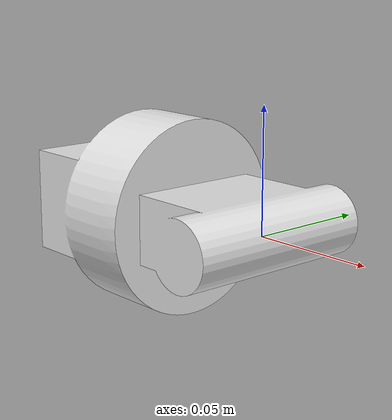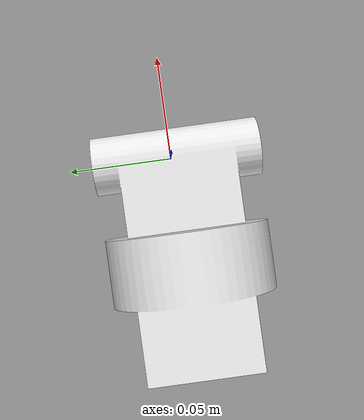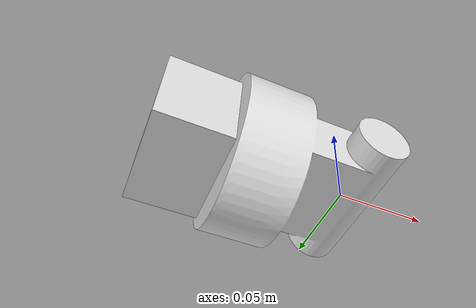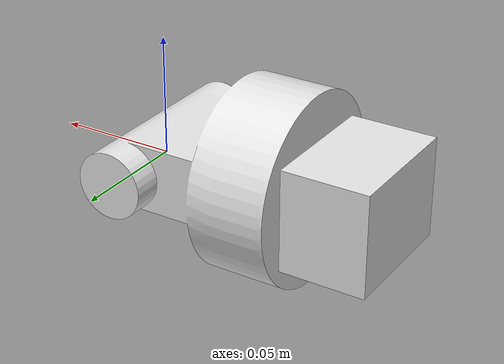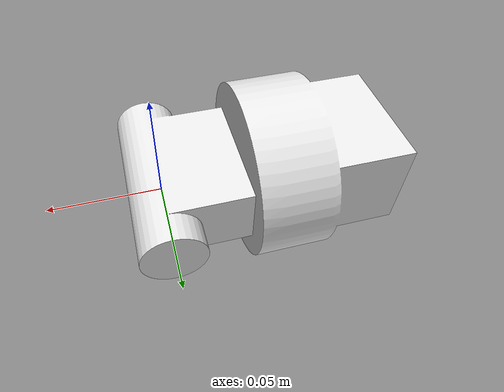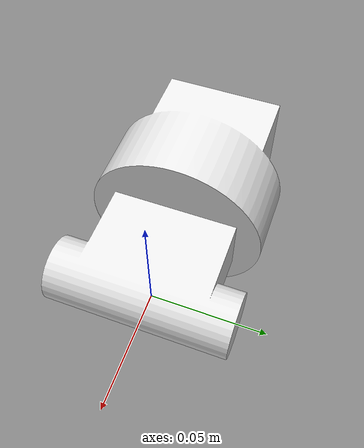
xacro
<?xml version="1.0"?>

<!-- isnake_robot -->
<robot name="isnake_robot" xmlns:xacro="http://www.ros.org/wiki/xacro">

  <!-- Constants for robot dimensions -->
  <xacro:property name="PI" value="3.1415"/>
  <xacro:property name="link_mass" value="0.07" /> <!-- arbitrary value for link mass -->
  <xacro:property name="link_length" value="0.090" /> <!-- Square dimensions of links -->
  <xacro:property name="link_radius" value="0.040" /> <!-- Square dimensions of links -->
  <xacro:property name="joint_pos" value="0.030" /> <!-- Square dimensions of links -->
  <xacro:property name="link_origin" value="1.5707 0 1.5707" /> <!-- Square dimensions of links -->
  <!-- link0 -->
  <link name="link0">
    <collision>
      <geometry>
        <mesh filename="package://snake_description/meshes/DAE/pitch_motor_link.dae" />
      </geometry>
    </collision>
    <visual>
      <geometry>
        <mesh filename="package://snake_description/meshes/DAE/pitch_motor_link.dae" />
      </geometry>

    </visual>

    <inertial>
      <origin rpy="${link_origin}" xyz="0 0 ${link_radius}"/>
      <mass value="${link_mass}"/>
      <inertia ixx="1.0" ixy="0.0" ixz="0.0" iyy="1.0" iyz="0.0" izz="1.0"/>
    </inertial>
  </link>

</robot>
